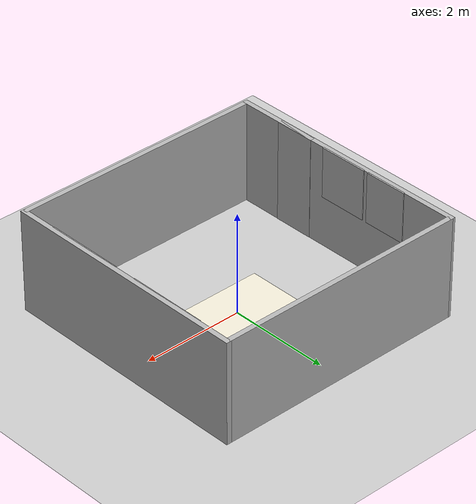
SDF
<sdf version="1.10">
 <world name="default">
  <gravity>0 0 -9.8000000000000007</gravity>
  <magnetic_field>6.0000000000000002e-06 2.3e-05 -4.1999999999999998e-05</magnetic_field>
  <atmosphere type="adiabatic"/>
  <physics type="ode">
   <max_step_size>0.001</max_step_size>
   <real_time_factor>1</real_time_factor>
   <real_time_update_rate>1000</real_time_update_rate>
  </physics>
  <scene>
   <ambient>0.400000006 0.400000006 0.400000006 1</ambient>
   <background>0.699999988 0.699999988 0.699999988 1</background>
   <shadows>true</shadows>
  </scene>
  <audio><device>default</device></audio>
  <spherical_coordinates>
   <surface_model>EARTH_WGS84</surface_model>
   <latitude_deg>0</latitude_deg>
   <longitude_deg>0</longitude_deg>
   <elevation>0</elevation>
   <heading_deg>0</heading_deg>
  </spherical_coordinates>
  <model name="ground_plane">
   <static>true</static>
   <link name="link">
    <collision name="collision">
     <geometry><plane><normal>0 0 1</normal><size>100 100</size></plane></geometry>
     <surface>
      <contact><collide_bitmask>65535</collide_bitmask></contact>
      <friction><ode><mu>100</mu><mu2>50</mu2></ode></friction>
     </surface>
    </collision>
    <visual name="visual">
     <cast_shadows>false</cast_shadows>
     <geometry><plane><normal>0 0 1</normal><size>1 1</size></plane></geometry>
     <material>
      <script><uri>file://media/materials/scripts/gazebo.material</uri><name>Gazebo/Grey</name></script>
     </material>
    </visual>
    <inertial>
     <mass>1</mass>
     <inertia><ixx>1</ixx><ixy>0</ixy><ixz>0</ixz><iyy>1</iyy><iyz>0</iyz><izz>1</izz></inertia>
    </inertial>
   </link>
  </model>
  <model name="Bookshelf">
   <static>true</static>
   <link name="link">
    <inertial>
     <mass>1</mass>
     <inertia><ixx>1</ixx><ixy>0</ixy><ixz>0</ixz><iyy>1</iyy><iyz>0</iyz><izz>1</izz></inertia>
    </inertial>
    <collision name="back">
     <pose>0 0.0050000000000000001 0.59999999999999998 0 0 0</pose>
     <geometry><box><size>0.90000000000000002 0.01 1.2</size></box></geometry>
    </collision>
    <visual name="visual1">
     <pose>0 0.0050000000000000001 0.59999999999999998 0 0 0</pose>
     <geometry><box><size>0.90000000000000002 0.01 1.2</size></box></geometry>
     <material>
      <diffuse>1 1 1 1</diffuse>
      <script><uri>file://media/materials/scripts/gazebo.material</uri><name>Gazebo/Wood</name></script>
      <pbr>
       <metal>
        <albedo_map>https://fuel.ignitionrobotics.org/1.0/openrobotics/models/bookshelf/3/files/bookshelf_diffuse.jpg</albedo_map>
       </metal>
      </pbr>
     </material>
    </visual>
    <collision name="left_side">
     <pose>0.45000000000000001 -0.19500000000000001 0.59999999999999998 0 0 0</pose>
     <geometry><box><size>0.02 0.40000000000000002 1.2</size></box></geometry>
    </collision>
    <visual name="visual2">
     <pose>0.45000000000000001 -0.19500000000000001 0.59999999999999998 0 0 0</pose>
     <geometry><box><size>0.02 0.40000000000000002 1.2</size></box></geometry>
     <material>
      <diffuse>1 1 1 1</diffuse>
      <script><uri>file://media/materials/scripts/gazebo.material</uri><name>Gazebo/Wood</name></script>
      <pbr>
       <metal>
        <albedo_map>https://fuel.ignitionrobotics.org/1.0/openrobotics/models/bookshelf/3/files/bookshelf_diffuse.jpg</albedo_map>
       </metal>
      </pbr>
     </material>
    </visual>
    <collision name="right_side">
     <pose>-0.45000000000000001 -0.19500000000000001 0.59999999999999998 0 0 0</pose>
     <geometry><box><size>0.02 0.40000000000000002 1.2</size></box></geometry>
    </collision>
    <visual name="visual3">
     <pose>-0.45000000000000001 -0.19500000000000001 0.59999999999999998 0 0 0</pose>
     <geometry><box><size>0.02 0.40000000000000002 1.2</size></box></geometry>
     <material>
      <diffuse>1 1 1 1</diffuse>
      <script><uri>file://media/materials/scripts/gazebo.material</uri><name>Gazebo/Wood</name></script>
      <pbr>
       <metal>
        <albedo_map>https://fuel.ignitionrobotics.org/1.0/openrobotics/models/bookshelf/3/files/bookshelf_diffuse.jpg</albedo_map>
       </metal>
      </pbr>
     </material>
    </visual>
    <collision name="bottom">
     <pose>0 -0.19500000000000001 0.029999999999999999 0 0 0</pose>
     <geometry><box><size>0.88 0.40000000000000002 0.059999999999999998</size></box></geometry>
    </collision>
    <visual name="visual4">
     <pose>0 -0.19500000000000001 0.029999999999999999 0 0 0</pose>
     <geometry><box><size>0.88 0.40000000000000002 0.059999999999999998</size></box></geometry>
     <material>
      <diffuse>1 1 1 1</diffuse>
      <script><uri>file://media/materials/scripts/gazebo.material</uri><name>Gazebo/Wood</name></script>
      <pbr>
       <metal>
        <albedo_map>https://fuel.ignitionrobotics.org/1.0/openrobotics/models/bookshelf/3/files/bookshelf_diffuse.jpg</albedo_map>
       </metal>
      </pbr>
     </material>
    </visual>
    <collision name="top">
     <pose>0 -0.19500000000000001 1.1899999999999999 0 0 0</pose>
     <geometry><box><size>0.88 0.40000000000000002 0.02</size></box></geometry>
    </collision>
    <visual name="visual5">
     <pose>0 -0.19500000000000001 1.1899999999999999 0 0 0</pose>
     <geometry><box><size>0.88 0.40000000000000002 0.02</size></box></geometry>
     <material>
      <diffuse>1 1 1 1</diffuse>
      <script><uri>file://media/materials/scripts/gazebo.material</uri><name>Gazebo/Wood</name></script>
      <pbr>
       <metal>
        <albedo_map>https://fuel.ignitionrobotics.org/1.0/openrobotics/models/bookshelf/3/files/bookshelf_diffuse.jpg</albedo_map>
       </metal>
      </pbr>
     </material>
    </visual>
    <collision name="low_shelf">
     <pose>0 -0.19500000000000001 0.42999999999999999 0 0 0</pose>
     <geometry><box><size>0.88 0.40000000000000002 0.02</size></box></geometry>
    </collision>
    <visual name="visual6">
     <pose>0 -0.19500000000000001 0.42999999999999999 0 0 0</pose>
     <geometry><box><size>0.88 0.40000000000000002 0.02</size></box></geometry>
     <material>
      <diffuse>1 1 1 1</diffuse>
      <script><uri>file://media/materials/scripts/gazebo.material</uri><name>Gazebo/Wood</name></script>
      <pbr>
       <metal>
        <albedo_map>https://fuel.ignitionrobotics.org/1.0/openrobotics/models/bookshelf/3/files/bookshelf_diffuse.jpg</albedo_map>
       </metal>
      </pbr>
     </material>
    </visual>
    <collision name="high_shelf">
     <pose>0 -0.19500000000000001 0.80000000000000004 0 0 0</pose>
     <geometry><box><size>0.88 0.40000000000000002 0.02</size></box></geometry>
    </collision>
    <visual name="visual7">
     <pose>0 -0.19500000000000001 0.80000000000000004 0 0 0</pose>
     <geometry><box><size>0.88 0.40000000000000002 0.02</size></box></geometry>
     <material>
      <diffuse>1 1 1 1</diffuse>
      <script><uri>file://media/materials/scripts/gazebo.material</uri><name>Gazebo/Wood</name></script>
      <pbr>
       <metal>
        <albedo_map>https://fuel.ignitionrobotics.org/1.0/openrobotics/models/bookshelf/3/files/bookshelf_diffuse.jpg</albedo_map>
       </metal>
      </pbr>
     </material>
    </visual>
   </link>
   <pose>-2 2.3999999999999999 0 0 0 0</pose>
  </model>
  <model name="cabinet">
   <static>true</static>
   <link name="cabinet_bottom_plate">
    <inertial>
     <pose>0 0 -1 0 0 0</pose>
     <inertia>
      <ixx>2.0499999999999998</ixx>
      <ixy>0</ixy>
      <ixz>0</ixz>
      <iyy>2.0499999999999998</iyy>
      <iyz>0</iyz>
      <izz>2.0499999999999998</izz>
     </inertia>
     <mass>25</mass>
    </inertial>
    <collision name="cabinet_bottom_plate_geom">
     <pose>0 0 0.01 0 0 0</pose>
     <geometry><box><size>0.45000000000000001 0.45000000000000001 0.02</size></box></geometry>
    </collision>
    <visual name="cabinet_bottom_plate_geom_visual">
     <pose>0 0 0.01 0 0 0</pose>
     <geometry><box><size>0.45000000000000001 0.45000000000000001 0.02</size></box></geometry>
     <material>
      <script><uri>file://media/materials/scripts/gazebo.material</uri><name>Gazebo/Wood</name></script>
     </material>
    </visual>
    <collision name="cabinet_bottom_plate_geom_cabinet_back_plate">
     <pose>0.23499999999999999 0 0.51000000000000001 0 0 0</pose>
     <geometry><box><size>0.02 0.45000000000000001 1.02</size></box></geometry>
    </collision>
    <visual name="cabinet_bottom_plate_geom_cabinet_back_plate_visual">
     <pose>0.23499999999999999 0 0.51000000000000001 0 0 0</pose>
     <geometry><box><size>0.02 0.45000000000000001 1.02</size></box></geometry>
     <material>
      <script><uri>file://media/materials/scripts/gazebo.material</uri><name>Gazebo/Wood</name></script>
     </material>
    </visual>
    <collision name="cabinet_bottom_plate_geom_cabinet_left_plate">
     <pose>0 0.23499999999999999 0.51000000000000001 0 0 0</pose>
     <geometry><box><size>0.45000000000000001 0.02 1.02</size></box></geometry>
    </collision>
    <visual name="cabinet_bottom_plate_geom_cabinet_left_plate_visual">
     <pose>0 0.23499999999999999 0.51000000000000001 0 0 0</pose>
     <geometry><box><size>0.45000000000000001 0.02 1.02</size></box></geometry>
     <material>
      <script><uri>file://media/materials/scripts/gazebo.material</uri><name>Gazebo/Wood</name></script>
     </material>
    </visual>
    <collision name="cabinet_bottom_plate_geom_cabinet_middle_plate">
     <pose>0 0 0.51000000000000001 0 0 0</pose>
     <geometry><box><size>0.45000000000000001 0.45000000000000001 0.02</size></box></geometry>
    </collision>
    <visual name="cabinet_bottom_plate_geom_cabinet_middle_plate_visual">
     <pose>0 0 0.51000000000000001 0 0 0</pose>
     <geometry><box><size>0.45000000000000001 0.45000000000000001 0.02</size></box></geometry>
     <material>
      <script><uri>file://media/materials/scripts/gazebo.material</uri><name>Gazebo/Wood</name></script>
     </material>
    </visual>
    <collision name="cabinet_bottom_plate_geom_cabinet_right_plate">
     <pose>0 -0.23499999999999999 0.51000000000000001 0 0 0</pose>
     <geometry><box><size>0.45000000000000001 0.02 1.02</size></box></geometry>
    </collision>
    <visual name="cabinet_bottom_plate_geom_cabinet_right_plate_visual">
     <pose>0 -0.23499999999999999 0.51000000000000001 0 0 0</pose>
     <geometry><box><size>0.45000000000000001 0.02 1.02</size></box></geometry>
     <material>
      <script><uri>file://media/materials/scripts/gazebo.material</uri><name>Gazebo/Wood</name></script>
     </material>
    </visual>
    <collision name="cabinet_bottom_plate_geom_cabinet_top_plate">
     <pose>0 0 1.01 0 0 0</pose>
     <geometry><box><size>0.45000000000000001 0.45000000000000001 0.02</size></box></geometry>
    </collision>
    <visual name="cabinet_bottom_plate_geom_cabinet_top_plate_visual">
     <pose>0 0 1.01 0 0 0</pose>
     <geometry><box><size>0.45000000000000001 0.45000000000000001 0.02</size></box></geometry>
     <material>
      <script><uri>file://media/materials/scripts/gazebo.material</uri><name>Gazebo/Wood</name></script>
     </material>
    </visual>
   </link>
   <pose>2.21 2.1699999999999999 0 0 0 1.5707</pose>
  </model>
  <model name="makerspet_poster">
   <link name="link">
    <visual name="visual">
     <geometry><box><size>0.029999999999999999 0.85714000000000001 1</size></box></geometry>
     <material>
      <script>
       <uri>file:///home/boris/.gz/fuel/fuel.ignitionrobotics.org/makerspet/models/makerspet_poster/1/material/script</uri>
       <uri>https://fuel.ignitionrobotics.org/1.0/makerspet/models/makerspet_poster/1/files/material/textures</uri>
       <name>Custom/makerspet</name>
      </script>
     </material>
    </visual>
    <inertial>
     <mass>1</mass>
     <inertia><ixx>1</ixx><ixy>0</ixy><ixz>0</ixz><iyy>1</iyy><iyz>0</iyz><izz>1</izz></inertia>
    </inertial>
   </link>
   <static>true</static>
   <pose>-2.4500000000000002 1 1.5 0 0 0</pose>
  </model>
  <model name="kaiaai_poster">
   <link name="link">
    <visual name="visual">
     <geometry><box><size>0.029999999999999999 0.97819999999999996 1</size></box></geometry>
     <material>
      <script>
       <uri>file:///home/boris/.gz/fuel/fuel.ignitionrobotics.org/makerspet/models/kaiaai_poster/1/material/script</uri>
       <uri>https://fuel.ignitionrobotics.org/1.0/makerspet/models/kaiaai_poster/1/files/material/textures</uri>
       <name>Custom/kaiaai</name>
      </script>
     </material>
    </visual>
    <inertial>
     <mass>1</mass>
     <inertia><ixx>1</ixx><ixy>0</ixy><ixz>0</ixz><iyy>1</iyy><iyz>0</iyz><izz>1</izz></inertia>
    </inertial>
   </link>
   <static>true</static>
   <pose>-2.4500000000000002 0 1.5 0 0 0</pose>
  </model>
  <model name="door_08x2m_0">
   <link name="link">
    <visual name="visual">
     <geometry><box><size>0.10000000000000001 0.80000000000000004 2</size></box></geometry>
     <material>
      <script>
       <uri>file:///home/boris/.gz/fuel/fuel.ignitionrobotics.org/makerspet/models/door_08x2m/1/material/script</uri>
       <uri>https://fuel.ignitionrobotics.org/1.0/makerspet/models/door_08x2m/1/files/material/textures</uri>
       <name>Custom/door_08x2m</name>
      </script>
     </material>
    </visual>
    <inertial>
     <mass>1</mass>
     <inertia><ixx>1</ixx><ixy>0</ixy><ixz>0</ixz><iyy>1</iyy><iyz>0</iyz><izz>1</izz></inertia>
    </inertial>
   </link>
   <static>true</static>
   <pose>-2.4950000000000001 -1.2 1 0 0 0</pose>
  </model>
  <model name="room_wall_2x5">
   <link name="link">
    <visual name="visual">
     <geometry><box><size>0.10000000000000001 5 2</size></box></geometry>
     <material>
      <script>
       <uri>file:///home/boris/.gz/fuel/fuel.ignitionrobotics.org/makerspet/models/room_wall_2x5m/1/material/script</uri>
       <uri>https://fuel.ignitionrobotics.org/1.0/makerspet/models/room_wall_2x5m/1/files/material/textures</uri>
       <name>Custom/room_wall_2x5</name>
      </script>
     </material>
    </visual>
    <collision name="collision"><geometry><box><size>0.10000000000000001 5 2</size></box></geometry></collision>
    <inertial>
     <mass>1</mass>
     <inertia><ixx>1</ixx><ixy>0</ixy><ixz>0</ixz><iyy>1</iyy><iyz>0</iyz><izz>1</izz></inertia>
    </inertial>
   </link>
   <static>true</static>
   <pose>-2.5 0 1 0 0 0</pose>
  </model>
  <model name="room_wall_2x5_0">
   <link name="link">
    <visual name="visual">
     <geometry><box><size>0.10000000000000001 5 2</size></box></geometry>
     <material>
      <script>
       <uri>file:///home/boris/.gz/fuel/fuel.ignitionrobotics.org/makerspet/models/room_wall_2x5m/1/material/script</uri>
       <uri>https://fuel.ignitionrobotics.org/1.0/makerspet/models/room_wall_2x5m/1/files/material/textures</uri>
       <name>Custom/room_wall_2x5</name>
      </script>
     </material>
    </visual>
    <collision name="collision"><geometry><box><size>0.10000000000000001 5 2</size></box></geometry></collision>
    <inertial>
     <mass>1</mass>
     <inertia><ixx>1</ixx><ixy>0</ixy><ixz>0</ixz><iyy>1</iyy><iyz>0</iyz><izz>1</izz></inertia>
    </inertial>
   </link>
   <static>true</static>
   <pose>2.5 0 1 0 0 0</pose>
  </model>
  <model name="room_wall_2x5_1">
   <link name="link">
    <visual name="visual">
     <geometry><box><size>0.10000000000000001 5 2</size></box></geometry>
     <material>
      <script>
       <uri>file:///home/boris/.gz/fuel/fuel.ignitionrobotics.org/makerspet/models/room_wall_2x5m/1/material/script</uri>
       <uri>https://fuel.ignitionrobotics.org/1.0/makerspet/models/room_wall_2x5m/1/files/material/textures</uri>
       <name>Custom/room_wall_2x5</name>
      </script>
     </material>
    </visual>
    <collision name="collision"><geometry><box><size>0.10000000000000001 5 2</size></box></geometry></collision>
    <inertial>
     <mass>1</mass>
     <inertia><ixx>1</ixx><ixy>0</ixy><ixz>0</ixz><iyy>1</iyy><iyz>0</iyz><izz>1</izz></inertia>
    </inertial>
   </link>
   <static>true</static>
   <pose>0 -2.4500000000000002 1 0 0 1.5707</pose>
  </model>
  <model name="room_wall_2x5_2">
   <link name="link">
    <visual name="visual">
     <geometry><box><size>0.10000000000000001 5 2</size></box></geometry>
     <material>
      <script>
       <uri>file:///home/boris/.gz/fuel/fuel.ignitionrobotics.org/makerspet/models/room_wall_2x5m/1/material/script</uri>
       <uri>https://fuel.ignitionrobotics.org/1.0/makerspet/models/room_wall_2x5m/1/files/material/textures</uri>
       <name>Custom/room_wall_2x5</name>
      </script>
     </material>
    </visual>
    <collision name="collision"><geometry><box><size>0.10000000000000001 5 2</size></box></geometry></collision>
    <inertial>
     <mass>1</mass>
     <inertia><ixx>1</ixx><ixy>0</ixy><ixz>0</ixz><iyy>1</iyy><iyz>0</iyz><izz>1</izz></inertia>
    </inertial>
   </link>
   <static>true</static>
   <pose>0 2.4500000000000002 1 0 0 1.5707</pose>
  </model>
  <model name="rug_ivory_2m_0">
   <link name="link">
    <visual name="visual">
     <geometry><box><size>1.6000000000000001 2 0.0050000000000000001</size></box></geometry>
     <material>
      <script>
       <uri>file:///home/boris/.gz/fuel/fuel.ignitionrobotics.org/makerspet/models/rug_ivory_2m/1/material/script</uri>
       <uri>https://fuel.ignitionrobotics.org/1.0/makerspet/models/rug_ivory_2m/1/files/material/textures</uri>
       <name>Custom/rug_ivory_2m</name>
      </script>
     </material>
    </visual>
    <inertial>
     <mass>1</mass>
     <inertia><ixx>1</ixx><ixy>0</ixy><ixz>0</ixz><iyy>1</iyy><iyz>0</iyz><izz>1</izz></inertia>
    </inertial>
   </link>
   <static>true</static>
   <pose>0 0.14999999999999999 0 0 0 1.5707</pose>
  </model>
  <model name="window_curtains">
   <link name="link">
    <visual name="visual">
     <geometry><box><size>0.02 1.5676000000000001 2</size></box></geometry>
     <material>
      <script>
       <uri>file:///home/boris/.gz/fuel/fuel.ignitionrobotics.org/makerspet/models/window_curtains/1/material/script</uri>
       <uri>https://fuel.ignitionrobotics.org/1.0/makerspet/models/window_curtains/1/files/material/textures</uri>
       <name>Custom/window_curtains</name>
      </script>
      <emissive>0 1 0 1</emissive>
     </material>
    </visual>
    <inertial>
     <mass>1</mass>
     <inertia><ixx>1</ixx><ixy>0</ixy><ixz>0</ixz><iyy>1</iyy><iyz>0</iyz><izz>1</izz></inertia>
    </inertial>
   </link>
   <static>true</static>
   <pose>2.4500000000000002 1 1 0 0 0</pose>
  </model>
  <model name="window_curtains_0">
   <link name="link">
    <visual name="visual">
     <geometry><box><size>0.02 1.5676000000000001 2</size></box></geometry>
     <material>
      <script>
       <uri>file:///home/boris/.gz/fuel/fuel.ignitionrobotics.org/makerspet/models/window_curtains/1/material/script</uri>
       <uri>https://fuel.ignitionrobotics.org/1.0/makerspet/models/window_curtains/1/files/material/textures</uri>
       <name>Custom/window_curtains</name>
      </script>
      <emissive>0 1 0 1</emissive>
     </material>
    </visual>
    <inertial>
     <mass>1</mass>
     <inertia><ixx>1</ixx><ixy>0</ixy><ixz>0</ixz><iyy>1</iyy><iyz>0</iyz><izz>1</izz></inertia>
    </inertial>
   </link>
   <static>true</static>
   <pose>2.4500000000000002 -1 1 0 0 0</pose>
  </model>
  <model name="red_ball_10in">
   <pose>1 1.25 0.127 0 0 0</pose>
   <link name="link">
    <inertial>
     <mass>0.21299999999999999</mass>
     <inertia>
      <ixx>0.0032266700000000001</ixx>
      <ixy>0</ixy>
      <ixz>0</ixz>
      <iyy>0.0032266700000000001</iyy>
      <iyz>0</iyz>
      <izz>0.0032266700000000001</izz>
     </inertia>
    </inertial>
    <visual name="visual">
     <geometry><sphere><radius>0.127</radius></sphere></geometry>
     <material>
      <script><uri>file://media/materials/scripts/gazebo.material</uri><name>Gazebo/Red</name></script>
     </material>
    </visual>
    <collision name="collision">
     <geometry><sphere><radius>0.127</radius></sphere></geometry>
     <surface>
      <bounce>
       <restitution_coefficient>0.15937000000000001</restitution_coefficient>
       <threshold>0</threshold>
      </bounce>
      <contact><ode><max_vel>100</max_vel><min_depth>0.001</min_depth></ode></contact>
     </surface>
    </collision>
   </link>
   <static>false</static>
  </model>
  <model name="tv_65in_emissive">
   <link name="link">
    <visual name="visual">
     <geometry><box><size>0.050000000000000003 1.45 0.82999999999999996</size></box></geometry>
     <material>
      <script><uri>file://media/materials/scripts/gazebo.material</uri><name>Gazebo/Black</name></script>
     </material>
    </visual>
    <inertial>
     <mass>1</mass>
     <inertia><ixx>1</ixx><ixy>0</ixy><ixz>0</ixz><iyy>1</iyy><iyz>0</iyz><izz>1</izz></inertia>
    </inertial>
   </link>
   <static>true</static>
   <pose>0 2.3999999999999999 0.90000000000000002 0 0 1.5707</pose>
  </model>
  <light name="sun" type="directional">
   <pose>0 0 10 0 0 0</pose>
   <intensity>1</intensity>
   <direction>-0.5 0.10000000000000001 -0.90000000000000002</direction>
   <diffuse>0.800000012 0.800000012 0.800000012 1</diffuse>
   <specular>0.200000003 0.200000003 0.200000003 1</specular>
   <attenuation>
    <range>1000</range>
    <linear>0.01</linear>
    <constant>0.90000000000000002</constant>
    <quadratic>0.001</quadratic>
   </attenuation>
   <spot><inner_angle>0</inner_angle><outer_angle>0</outer_angle><falloff>0</falloff></spot>
  </light>
 </world>
</sdf>
